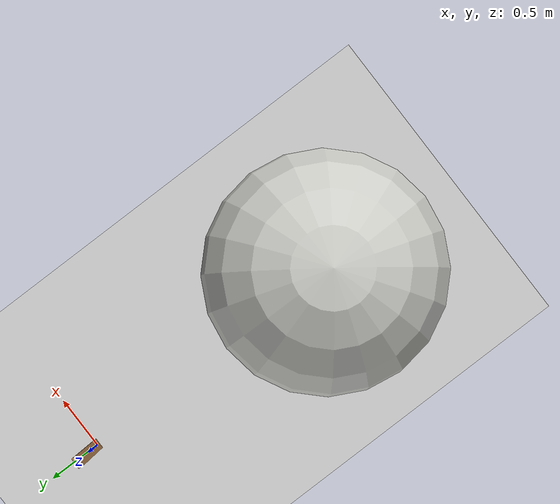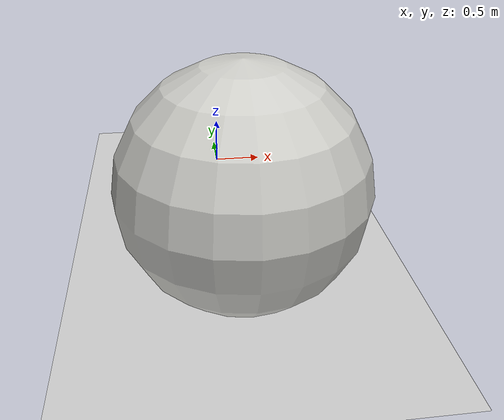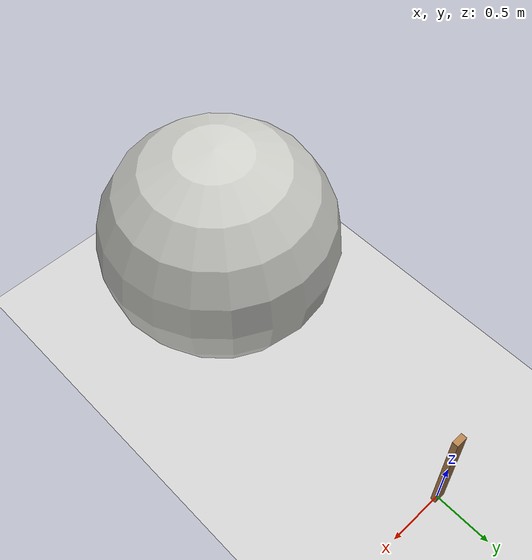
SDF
<?xml version="1.0" ?>
<sdf version="1.5">
  <world name="default">
    <!-- A global light source -->
    <include>
      <uri>model://sun</uri>
    </include>
    <!-- A ground plane -->
    <include>
      <uri>model://ground_plane</uri>
    </include>
    <!-- A ground cube -->
    <model name="cube">
      <pose>0 0 0.5 0 0 0</pose>
      <link name="cube_body">
        <inertial>
          <inertia>
            <ixx>1</ixx>
            <ixy>0</ixy>
            <ixz>0</ixz>
            <iyy>1</iyy>
            <iyz>0</iyz>
            <izz>1</izz>
          </inertia>
          <mass>1.0</mass>
        </inertial>
        <collision name="geom">
          <geometry>
            <box>
              <size>0.1 0.05 1</size>
            </box>
          </geometry>
        </collision>
        <visual name="visual">
          <geometry>
            <box>
              <size>0.1 0.05 1</size>
            </box>
          </geometry>
          <material>
            <script>
              <name>Gazebo/WoodFloor</name>
            </script>
          </material>
        </visual>
      </link>
      <static>true</static>
    </model>
    <!-- A sphere -->
    <model name="sphere">
      <pose>0 -2.5 1 0 0 0</pose>
      <link name="sphere_body">
        <inertial>
          <inertia>
            <ixx>1</ixx>
            <ixy>0</ixy>
            <ixz>0</ixz>
            <iyy>1</iyy>
            <iyz>0</iyz>
            <izz>1</izz>
          </inertia>
          <mass>1.0</mass>
        </inertial>
        <collision name="geom">
          <geometry>
            <sphere>
              <radius>1</radius>
            </sphere>
          </geometry>
        </collision>
        <visual name="visual">
          <geometry>
            <sphere>
              <radius>1</radius>
            </sphere>
          </geometry>
          <material>
            <script>
              <name>Gazebo/CeilingTiled</name>
            </script>
          </material>
        </visual>
      </link>
      <static>true</static>
    </model>
  </world>
</sdf>
